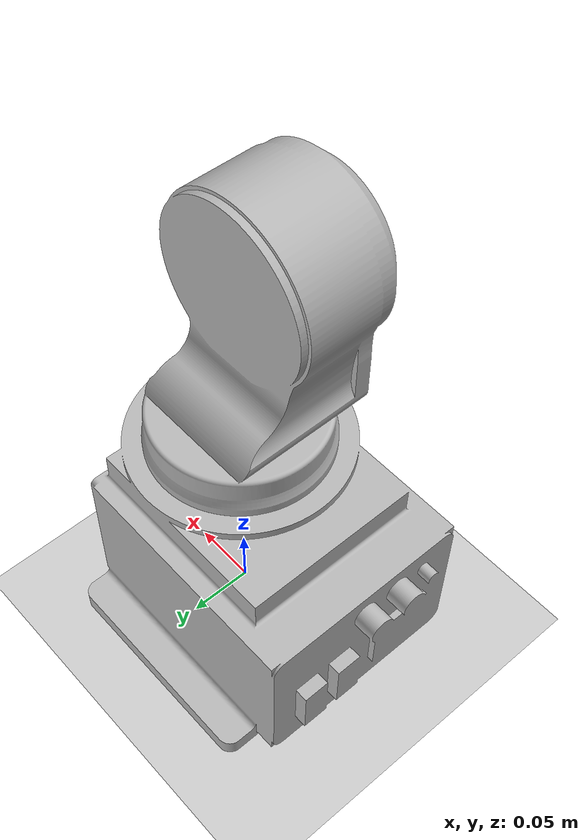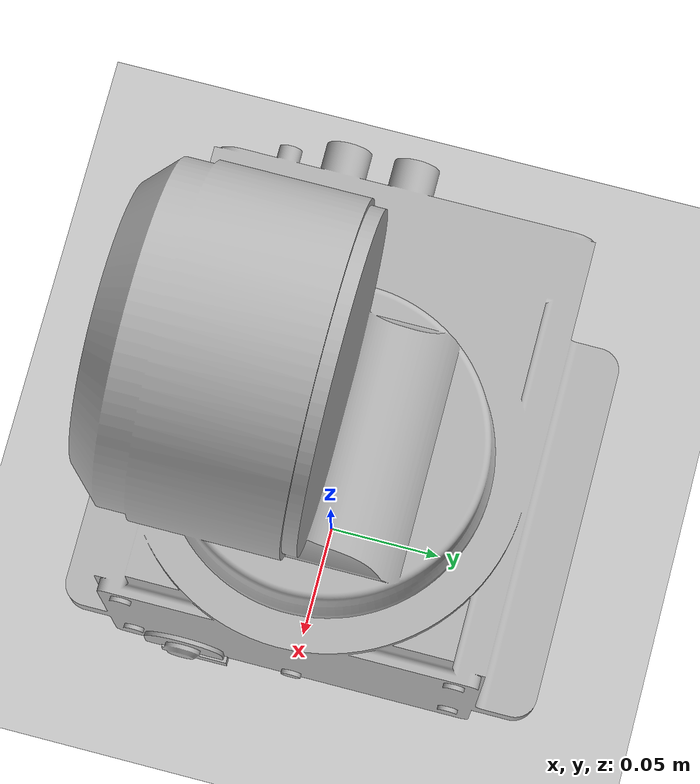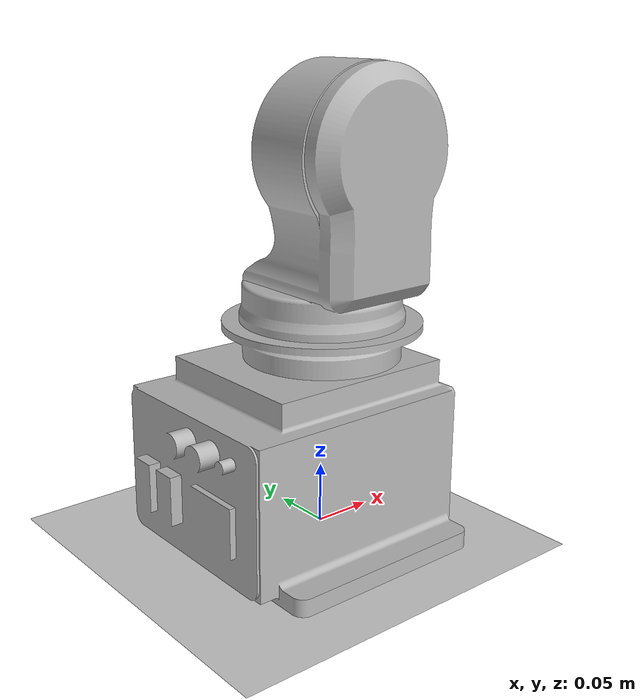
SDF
<sdf version="1.4">
 <world name="default">
  <light name="sun" type="directional">
   <pose>0 0 10 0 -0 0</pose>
   <diffuse>0.8 0.8 0.8 1</diffuse>
   <specular>0.2 0.2 0.2 1</specular>
   <attenuation>
    <range>1000</range>
    <constant>0.9</constant>
    <linear>0.01</linear>
    <quadratic>0.001</quadratic>
   </attenuation>
   <direction>-0.5 0.1 -0.9</direction>
  </light>
  <model name="ground_plane">
   <static>1</static>
   <link name="link">
    <collision name="collision">
     <geometry><plane><normal>0 0 1</normal><size>100 100</size></plane></geometry>
     <surface><friction><ode><mu>100</mu><mu2>50</mu2></ode></friction></surface>
    </collision>
    <visual name="visual">
     <cast_shadows>0</cast_shadows>
     <geometry><plane><normal>0 0 1</normal><size>100 100</size></plane></geometry>
     <material>
      <script><uri>file://media/materials/scripts/gazebo.material</uri><name>Gazebo/Grey</name></script>
     </material>
    </visual>
    <velocity_decay><linear>0</linear><angular>0</angular></velocity_decay>
   </link>
  </model>
  <physics type="ode">
   <max_step_size>0.001</max_step_size>
   <real_time_factor>1</real_time_factor>
   <real_time_update_rate>1000</real_time_update_rate>
   <gravity>0 0 -9.8</gravity>
  </physics>
  <scene><ambient>0.4 0.4 0.4 1</ambient><background>0.7 0.7 0.7 1</background><shadows>1</shadows></scene>
  <spherical_coordinates>
   <surface_model>EARTH_WGS84</surface_model>
   <latitude_deg>0</latitude_deg>
   <longitude_deg>0</longitude_deg>
   <elevation>0</elevation>
   <heading_deg>0</heading_deg>
  </spherical_coordinates>
  <model name="sia5">
   <link name="base_link">
    <inertial>
     <mass>5.625</mass>
     <inertia><ixx>1</ixx><ixy>0</ixy><ixz>0</ixz><iyy>1</iyy><iyz>0</iyz><izz>1</izz></inertia>
    </inertial>
    <collision name="base_link_collision">
     <geometry>
      <mesh>
       <scale>1 1 1</scale>
       <uri>/home/ryodo/Documents/Laboratry/ROS/motoman_ws/src/motoman_project/motoman_description/meshes/sia5/collision/STL/base_link.stl</uri>
      </mesh>
     </geometry>
     <surface><friction><ode><mu>0.2</mu><mu2>0.2</mu2></ode></friction></surface>
    </collision>
    <visual name="base_link_visual">
     <geometry>
      <mesh>
       <scale>1 1 1</scale>
       <uri>/home/ryodo/Documents/Laboratry/ROS/motoman_ws/src/motoman_project/motoman_description/meshes/sia5/visual/COLLADA/base_link.dae</uri>
      </mesh>
     </geometry>
    </visual>
    <velocity_decay><linear>0</linear><angular>0</angular></velocity_decay>
    <self_collide>1</self_collide>
   </link>
   <joint name="world" type="revolute">
    <child>base_link</child>
    <parent>world</parent>
    <axis>
     <limit><lower>0</lower><upper>0</upper></limit>
     <dynamics><damping>0</damping></dynamics>
     <xyz>0 0 1</xyz>
    </axis>
   </joint>
   <link name="link_s">
    <pose>0 0 0.1765 0 -0 0</pose>
    <inertial>
     <mass>4.6875</mass>
     <inertia><ixx>1</ixx><ixy>0</ixy><ixz>0</ixz><iyy>1</iyy><iyz>0</iyz><izz>1</izz></inertia>
    </inertial>
    <collision name="link_s_collision">
     <geometry>
      <mesh>
       <scale>1 1 1</scale>
       <uri>/home/ryodo/Documents/Laboratry/ROS/motoman_ws/src/motoman_project/motoman_description/meshes/sia5/collision/STL/link_s.stl</uri>
      </mesh>
     </geometry>
     <surface><friction><ode><mu>0.2</mu><mu2>0.2</mu2></ode></friction></surface>
    </collision>
    <visual name="link_s_visual">
     <geometry>
      <mesh>
       <scale>1 1 1</scale>
       <uri>/home/ryodo/Documents/Laboratry/ROS/motoman_ws/src/motoman_project/motoman_description/meshes/sia5/visual/COLLADA/link_s.dae</uri>
      </mesh>
     </geometry>
    </visual>
    <velocity_decay><linear>0</linear><angular>0</angular></velocity_decay>
    <self_collide>1</self_collide>
   </link>
   <joint name="joint_s" type="revolute">
    <child>link_s</child>
    <parent>base_link</parent>
    <axis>
     <xyz>0 0 1</xyz>
     <limit><lower>-3.14159</lower><upper>3.14159</upper><effort>30</effort><velocity>3.49066</velocity></limit>
     <dynamics><damping>0.7</damping></dynamics>
    </axis>
   </joint>
   <static>0</static>
   <plugin name="gazebo_ros_control" filename="libgazebo_ros_control.so">
    <robotNamespace>/sia5</robotNamespace>
   </plugin>
  </model>
 </world>
</sdf>
